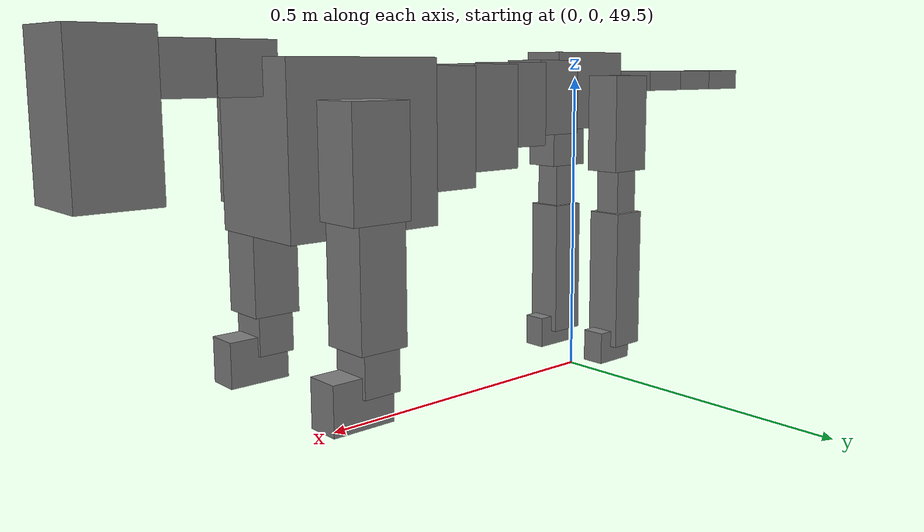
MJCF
<mujoco model="dog">

    <default>
        <joint armature="0.02" stiffness="1" damping="0.2" limited="true"/>
        <geom condim="3" friction="1 0.05 0.05" margin="0.01"/>
        <motor ctrllimited="true" ctrlrange="-1.0 1.0" forcelimited="true" gear="50"/>
    </default>

    <compiler inertiafromgeom="true" angle="radian"/>

    <option timestep="0.016" iterations="50" tolerance="1e-10" solver="Newton" jacobian="dense" cone="pyramidal"/>

    <size nconmax="20000" njmax="60000" nstack="5000000"/>
    <visual>
        <map force="0.1" zfar="30"/>
        <rgba haze="0.15 0.25 0.35 1"/>
        <quality shadowsize="2048"/>
        <global offwidth="800" offheight="800"/>
    </visual>

    <asset>
        <texture type="skybox" builtin="gradient" rgb1="0.3 0.5 0.7" rgb2="0 0 0" width="512" height="512"/>
        <texture name="texplane" type="2d" builtin="checker" rgb1=".2 .3 .4" rgb2=".1 0.15 0.2" width="512" height="512"
                 mark="cross" markrgb=".8 .8 .8"/>
        <texture name="texgeom" type="cube" builtin="flat" mark="cross" width="127" height="1278" rgb1="0.8 0.6 0.4"
                 rgb2="0.8 0.6 0.4" markrgb="1 1 1" random="0.01"/>

        <material name="matplane" reflectance="0.3" texture="texplane" texrepeat="1 1" texuniform="true"/>
        <material name="matgeom" texture="texgeom" texuniform="true" rgba="0.8 0.6 .4 1"/>
    </asset>

    <worldbody>
        <geom name="floor" pos="0 0 0" size="0 0 .25" type="plane" material="matplane" condim="3"/>

        <light directional="false" diffuse=".2 .2 .2" specular="0 0 0" pos="0 0 5" dir="0 0 -1" castshadow="false"/>
        <light mode="targetbodycom" target="torso" directional="false" diffuse=".8 .8 .8" specular="0.3 0.3 0.3"
               pos="0 0 4.0" dir="0 0 -1"/>

        <body name="root" pos="0 0 50">
            <freejoint name="root_1"/>
            <geom type="box" pos="0 0 -0.02" size="0.0774  0.0358  0.063" density="2030"/>

            <body name="spine1" pos="0.054 0 0">
                <joint name="spine1_y" axis="0 1 0" range="0 0.7" limited="true"/>
                <geom type="box" pos="0.02375 0 -0.03" size="0.04375  0.0375  0.05985" density="2030"/>

                <body name="spine2" pos="0.0612 0 0">
                    <joint name="spine2_y" axis="0 1 0" range="-0.15 0.15" limited="true"/>
                    <geom type="box" pos="0.03555  0  -0.04" size="0.04055  0.039  0.06615" density="2030"/>

                    <body name="spine3" pos="0.0730 0 0">
                        <joint name="spine3_y" axis="0 1 0" range="-0.15 0.15" limited="true"/>
                        <geom type="box" pos="0.03555  0  -0.057" size="0.04555  0.0445  0.081" density="2030"/>

                        <body name="spine4" pos="0.0780 0 0">
                            <joint name="spine4_y" axis="0 1 0" range="-0.15 0.15" limited="true"/>
                            <geom type="box" pos="0.05265  0  -0.07" size="0.05265  0.045  0.09135" density="2030"/>

                            <body name="torso" pos="0.1082 0 0">
                                <joint name="torso_y" axis="0 1 0" range="-0.15 0.15" limited="true"/>
                                <geom type="box" pos="0.11925  0  -0.085" size="0.11925  0.085  0.11745"
                                      density="2030"/>

                                <body name="neck1" pos="0.2160  0   0.0180">
                                    <joint name="neck1_y" axis="0 1 0" range="-1.2  -1" limited="true"/>
                                    <geom type="box" pos="0.0423  0  0" size="0.0423  0.03  0.036" density="2325"/>

                                    <body name="neck2" pos="0.0853  0  0">
                                        <joint name="neck2_y" axis="0 1 0" range="0.1  0" limited="true"/>
                                        <geom type="box" pos="0.0423  0  0" size="0.0423  0.03  0.036" density="2325"/>

                                        <body name="head" pos="0.0853  0  0">
                                            <joint name="head_y" axis="0 1 0" range="-0.3  -0.2" limited="true"/>
                                            <geom type="box" pos="0.0531  0  -0.055" size="0.0531  0.06  0.1044"
                                                  density="4030"/>

                                        </body>
                                    </body>
                                </body>

                                <body name="front_shoulder" pos="0.156  0   -0.0480">
                                    <joint name="front_shoulder_y" axis="0 1 0" range="-1 1.5" limited="true"/>
                                    <geom type="box" pos="0 0.13 -0.0499" size="0.0440  0.0376  0.0766" density="1158"/>
                                    <geom type="box" pos="0 -0.13 -0.0499" size="0.0440  0.0376  0.0766"
                                          density="1158"/>

                                    <body name="front_elbow" pos="0  0  -0.0998">
                                        <joint name="front_elbow_y" axis="0 1 0" range="-2 0" limited="true"/>
                                        <geom type="box" pos="0 0.13 -0.0953" size="0.0358  0.0366  0.0953"
                                              density="1081"/>
                                        <geom type="box" pos="0 -0.13 -0.0953" size="0.0358  0.0366  0.0953"
                                              density="1081"/>

                                        <body name="front_wrist" pos="0  0  -0.1906">
                                            <joint name="front_wrist_y" axis="0 1 0" range="-0.2 0" limited="true"/>
                                            <geom type="box" pos="0 0.13 -0.0230" size="0.0278  0.0309  0.0362"
                                                  density="1664"/>
                                            <geom type="box" pos="0 -0.13 -0.0230" size="0.0278  0.0309  0.0362"
                                                  density="1664"/>

                                            <body name="front_finger_end" pos="0  0  -0.0460">
                                                <joint name="front_finger_y" axis="0 1 0" range="-0.4 1"
                                                       limited="true"/>
                                                <geom type="box" pos="0.0254  0.13  -0.0193"
                                                      size="0.0465  0.0254  0.0343" density="1515"/>
                                                <geom type="box" pos="0.0254  -0.13  -0.0193"
                                                      size="0.0465  0.0254  0.0343" density="1515"/>

                                            </body>

                                        </body>
                                    </body>
                                </body>

                            </body>
                        </body>
                    </body>
                </body>
            </body>

            <body name="back_hip" pos="-0.03 0 -0.018">
                <joint name="back_hip_y" axis="0 1 0" range="-1.5 0.3" limited="true"/>
                <geom type="box" pos="0 0.07 -0.0562" size="0.0383  0.0300  0.0790" density="1154"/>
                <geom type="box" pos="0 -0.07 -0.0562" size="0.0383  0.0300  0.0790" density="1154"/>

                <body name="back_knee" pos="0  0  -0.1125">
                    <joint name="back_knee_y" axis="0 1 0" range="0 2.8" limited="true"/>
                    <geom type="box" pos="0 0.07 -0.0523" size="0.0224  0.0221  0.0678" density="1227"/>
                    <geom type="box" pos="0 -0.07 -0.0523" size="0.0224  0.0221  0.0678" density="1227"/>

                    <body name="back_ankle" pos="0  0  -0.1046">
                        <joint name="back_ankle_y" axis="0 1 0" range="-2.2 0" limited="true"/>
                        <geom type="box" pos="0 0.07 -0.1026" size="0.0298  0.0298  0.1139" density="1284"/>
                        <geom type="box" pos="0 -0.07 -0.1026" size="0.0298  0.0298  0.1139" density="1284"/>

                        <body name="back_toe_end" pos="0  0  -0.2052">
                            <joint name="back_toe_y" axis="0 1 0" range="-0.4 1" limited="true"/>
                            <geom type="box" pos="0.0190  0.07  -0.0110" size="0.0349  0.0190  0.0260" density="1515"/>
                            <geom type="box" pos="0.0190  -0.07  -0.0110" size="0.0349  0.0190  0.0260" density="1515"/>

                        </body>
                    </body>
                </body>
            </body>

            <body name="tail1" pos="-0.074 0 -0.006">
                <joint name="tail1_y" axis="0 1 0" range="-0.2 0.2" limited="true"/>
                <geom type="box" pos="-0.0536  0  0" size="0.045  0.025  0.0175" density="1587"/>

                <body name="tail2" pos="-0.09 0 0">
                    <joint name="tail2_y" axis="0 1 0" range="-0.2 0.2" limited="true"/>
                    <geom type="box" pos="-0.0536  0  0" size="0.045  0.025  0.0175" density="1587"/>

                    <body name="tail3" pos="-0.09 0 0">
                        <joint name="tail3_y" axis="0 1 0" range="-0.2 0.2" limited="true"/>
                        <geom type="box" pos="-0.0536  0  0" size="0.045  0.025  0.0175" density="1587"/>

                        <body name="tail4" pos="-0.09 0 0">
                            <joint name="tail4_y" axis="0 1 0" range="-0.2 0.2" limited="true"/>
                            <geom type="box" pos="-0.0536  0  0" size="0.045  0.025  0.0175" density="1587"/>

                        </body>
                    </body>
                </body>
            </body>
        </body>
    </worldbody>

    <actuator>
        <motor joint="spine1_y" forcerange="-150 150     "/>
        <motor joint="spine2_y" forcerange="-150 150     "/>
        <motor joint="spine3_y" forcerange="-150 150     "/>
        <motor joint="spine4_y" forcerange="-150 150     "/>
        <motor joint="torso_y" forcerange="-150 150     "/>
        <motor joint="neck1_y" forcerange="-100 100       "/>
        <motor joint="neck2_y" forcerange="-100 100       "/>
        <motor joint="head_y" forcerange="-150 150       "/>
        <motor joint="front_shoulder_y" forcerange="-192.22 158.29"/>
        <motor joint="front_elbow_y" forcerange="-178.61 187.83"/>
        <motor joint="front_wrist_y" forcerange="-111.09 136.20"/>
        <motor joint="front_finger_y" forcerange="-44.16 51.14"/>
        <motor joint="back_hip_y" forcerange="-365.43 234.86"/>
        <motor joint="back_knee_y" forcerange="-260.57 260.88"/>
        <motor joint="back_angle_y" forcerange="-156.51 219.82"/>
        <motor joint="back_toe_y" forcerange="-37.82 34.29"/>
        <motor joint="tail1_y" forcerange="-50 50     "/>
        <motor joint="tail2_y" forcerange="-50 50     "/>
        <motor joint="tail3_y" forcerange="-50 50     "/>
        <motor joint="tail4_y" forcerange="-50 50     "/>
    </actuator>
</mujoco>
